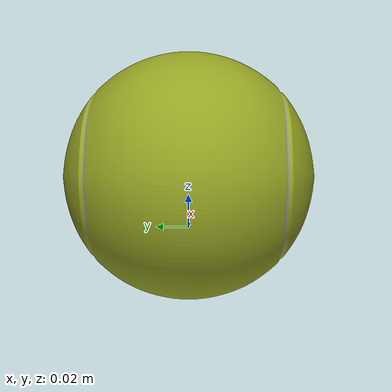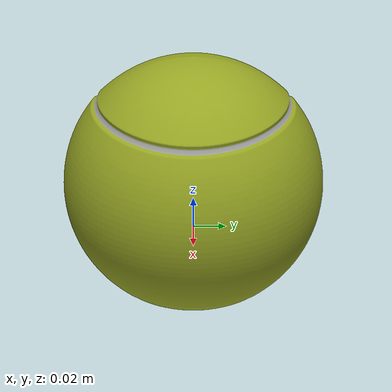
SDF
<?xml version="1.0"?>

<sdf version="1.5">
<model name="tennis_ball">
  <pose>0 0 0.032 0 0 0</pose>
    <link name="link">
      <velocity_decay>
        <linear>0</linear>
        <angular>0.001</angular>
      </velocity_decay>
      <inertial>
        <mass>0.056</mass>
        <inertia>
          <ixx>0.000038</ixx>
          <ixy>0.0</ixy>
          <ixz>0.0</ixz>
          <iyy>0.000038</iyy>
          <iyz>0.0</iyz>
          <izz>0.000038</izz>
        </inertia>
      </inertial>
      <collision name="collision">
        <geometry>
          <sphere>
            <radius>0.032</radius>
          </sphere>
        </geometry>
        <surface>
          <friction>
            <ode>
              <mu>0.25</mu>
              <mu2>0.25</mu2>
            </ode>
          </friction>
          <bounce>
            <restitution_coefficient>0.8</restitution_coefficient>
            <threshold>0.0</threshold>
          </bounce>
          <contact>
            <ode>
              <max_vel>1000</max_vel>
            </ode>
          </contact>
        </surface>
      </collision>
      <visual name="visual">
        <geometry>
          <mesh>
            <uri>model://tennis_ball/meshes/tennis_ball.dae</uri>
          </mesh>
        </geometry>
      </visual>
    </link>
  </model>
</sdf>
